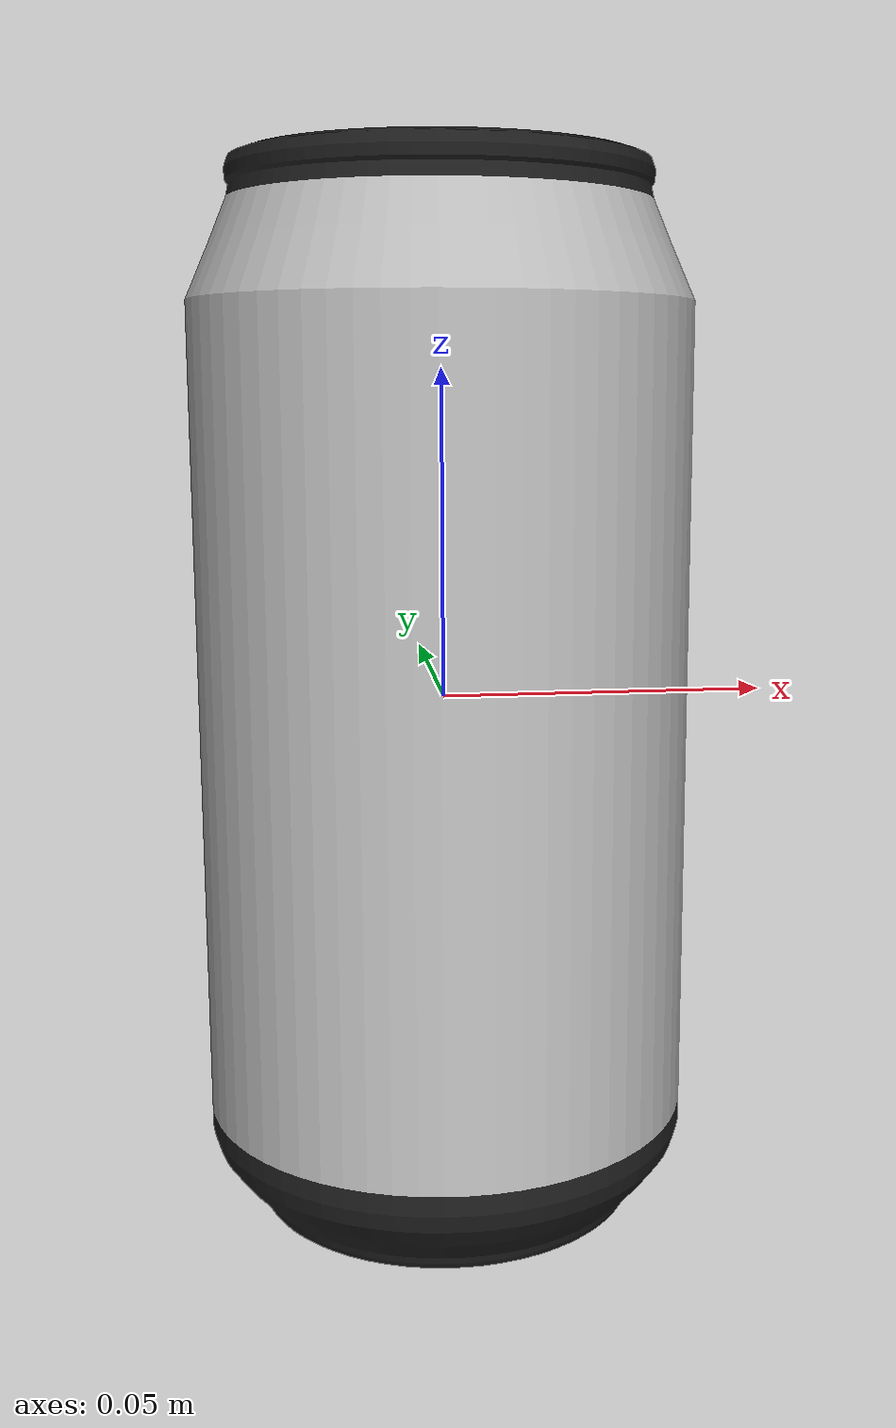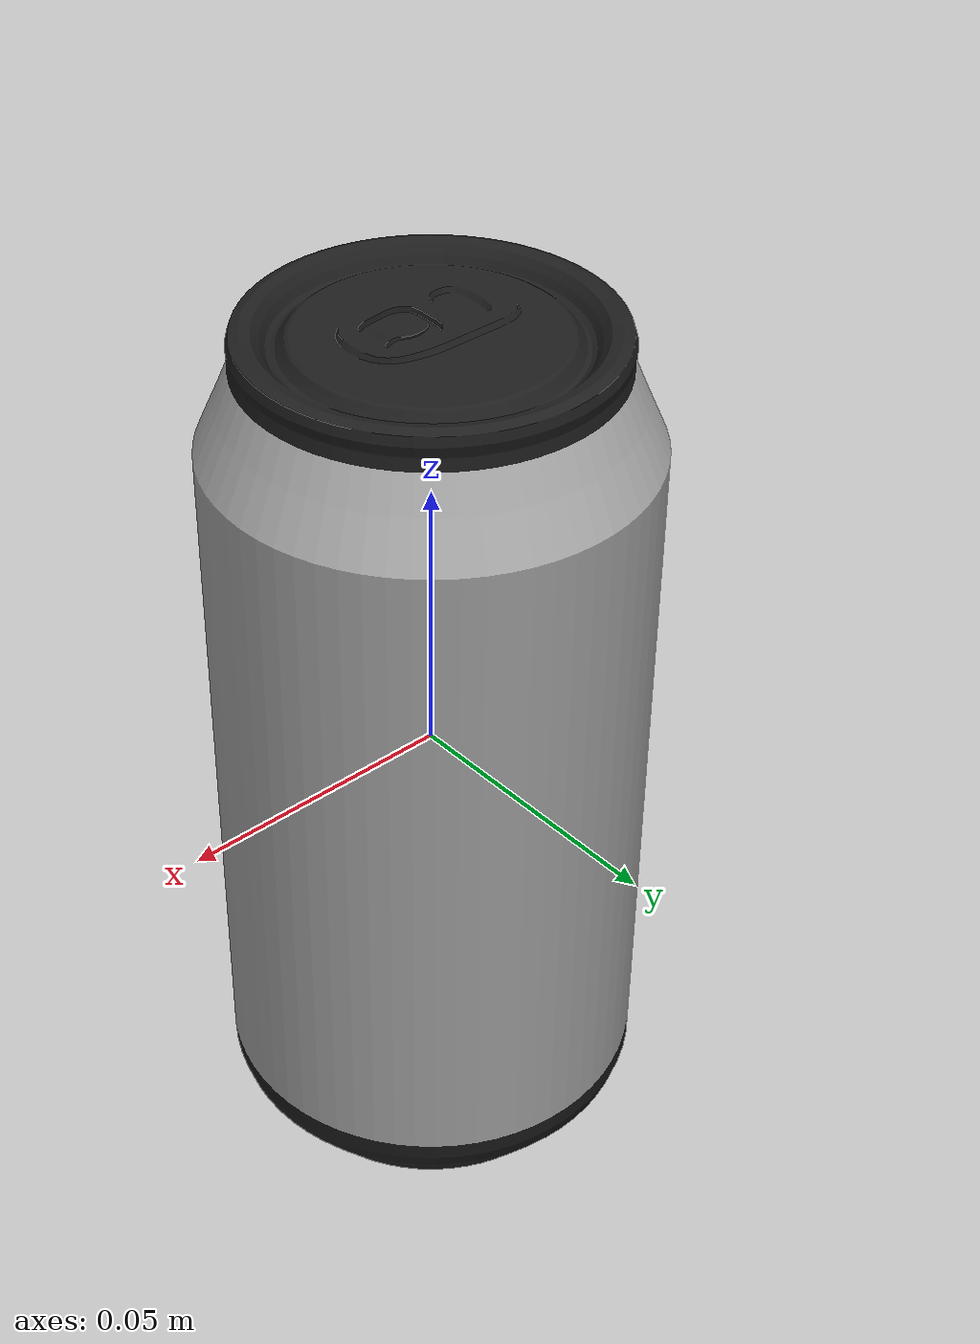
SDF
<?xml version="1.0" ?>
<sdf version="1.5">
  <model name="coke_can">
    <link name="link">
      <inertial>
        <pose>0 0 0 0 0 0</pose>
        <mass>0.090</mass>
        <inertia>
          <ixx>0.000988</ixx>
          <ixy>0</ixy>
          <ixz>0</ixz>
          <iyy>0.000988</iyy>
          <iyz>0</iyz>
          <izz>0.000312</izz>
        </inertia>
      </inertial>
      <collision name="collision">
        <pose>0 0 0 0 0 0</pose>
        <geometry>
					<cylinder>
						<radius>0.035</radius>
						<length>0.16</length>
					</cylinder>
        </geometry>
        <surface>
          <friction>
            <ode>
              <mu>1000.0</mu>
              <mu2>1000.0</mu2>
            </ode>
          </friction>
          <contact>
            <ode>
							<max_vel>0.1</max_vel>
							<soft_cfm>0.8</soft_cfm>
							<soft_erp>0.8</soft_erp>
							<kd>2500</kd>
							<kp>10</kp>
							<min_depth>0.001</min_depth>
            </ode>
          </contact>
        </surface>
      </collision>
      <visual name="visual">
        <pose>0 0 0 0 0 0</pose>
        <geometry>
          <mesh>
            <uri>model://coke_can/meshes/coke_can.dae</uri>
						<scale>0.875 0.875 1</scale>
          </mesh>
        </geometry>
      </visual>
    </link>
  </model>
</sdf>
